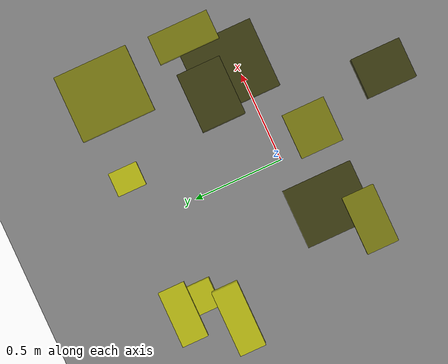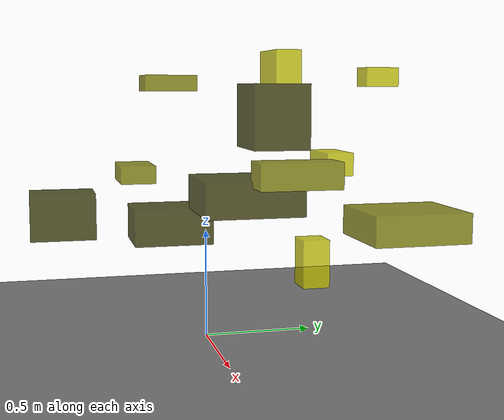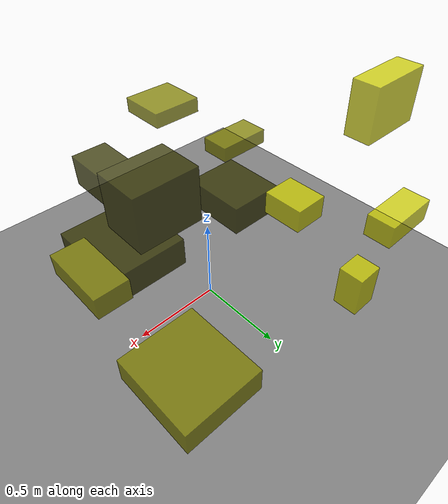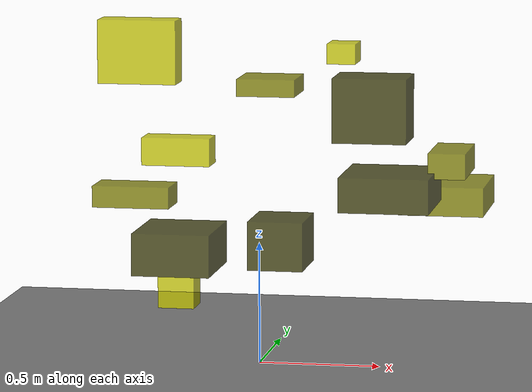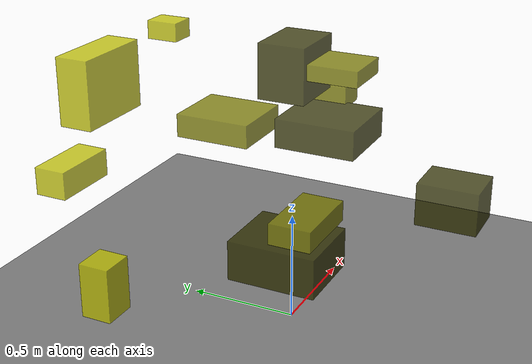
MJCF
<?xml version="1.0"?>
<mujoco model="obstacle_scene">
  <compiler angle="radian" coordinate="local"/>
  <option timestep="0.001" gravity="0 0 -9.81"/>

  <asset>
    <material name="obstacle_mat" rgba="0.8 0.8 0.0 0.8"/>
    <material name="ground_mat" rgba="0.5 0.5 0.5 1"/>
  </asset>

  <worldbody>
    <!-- Ground plane -->
    <geom name="ground" type="plane" size="3 3 0.1" material="ground_mat"/>

    <!-- Obstacles -->
    <body name="obstacle_0" pos="0.205912 -0.658126 0.626379">
      <geom name="obs_0" type="box" size="0.108174 0.133679 0.095085" rgba="0.2 0.2 0.0 0.8"/>
    </body>
    <body name="obstacle_1" pos="0.078914 -0.186195 1.178943">
      <geom name="obs_1" type="box" size="0.116858 0.111009 0.034384" rgba="0.5 0.5 0.0 0.8"/>
    </body>
    <body name="obstacle_2" pos="-0.502444 0.788705 0.759020">
      <geom name="obs_2" type="box" size="0.149409 0.070357 0.059987" rgba="0.8 0.8 0.0 0.8"/>
    </body>
    <body name="obstacle_3" pos="0.531799 0.057727 0.728965">
      <geom name="obs_3" type="box" size="0.184587 0.199010 0.071282" rgba="0.2 0.2 0.0 0.8"/>
    </body>
    <body name="obstacle_4" pos="0.765135 0.202525 0.828998">
      <geom name="obs_4" type="box" size="0.076754 0.161968 0.052178" rgba="0.5 0.5 0.0 0.8"/>
    </body>
    <body name="obstacle_5" pos="0.229867 0.744299 1.205553">
      <geom name="obs_5" type="box" size="0.061141 0.073995 0.042742" rgba="0.8 0.8 0.0 0.8"/>
    </body>
    <body name="obstacle_6" pos="-0.310350 -0.121043 0.490461">
      <geom name="obs_6" type="box" size="0.159459 0.189508 0.086292" rgba="0.2 0.2 0.0 0.8"/>
    </body>
    <body name="obstacle_7" pos="-0.462058 -0.272786 0.732779">
      <geom name="obs_7" type="box" size="0.156663 0.085841 0.043075" rgba="0.5 0.5 0.0 0.8"/>
    </body>
    <body name="obstacle_8" pos="-0.615569 0.533023 1.220736">
      <geom name="obs_8" type="box" size="0.168299 0.067871 0.135691" rgba="0.8 0.8 0.0 0.8"/>
    </body>
    <body name="obstacle_9" pos="0.439350 0.197018 1.042304">
      <geom name="obs_9" type="box" size="0.153877 0.115285 0.133362" rgba="0.2 0.2 0.0 0.8"/>
    </body>
    <body name="obstacle_10" pos="0.684183 0.688530 0.611466">
      <geom name="obs_10" type="box" size="0.180411 0.200191 0.060820" rgba="0.5 0.5 0.0 0.8"/>
    </body>
    <body name="obstacle_11" pos="-0.479525 0.679018 0.223787">
      <geom name="obs_11" type="box" size="0.078783 0.072321 0.128736" rgba="0.8 0.8 0.0 0.8"/>
    </body>
  </worldbody>
</mujoco>
